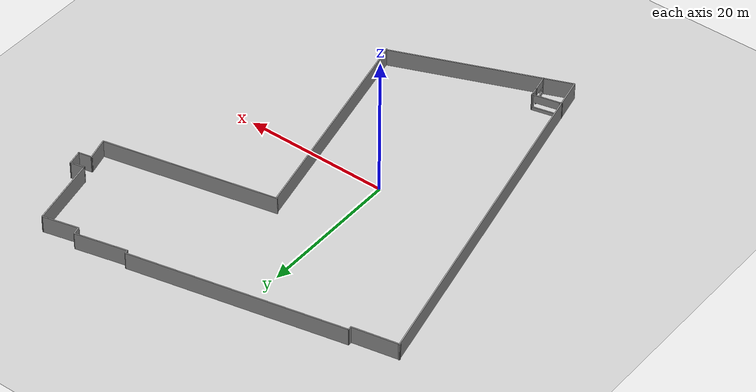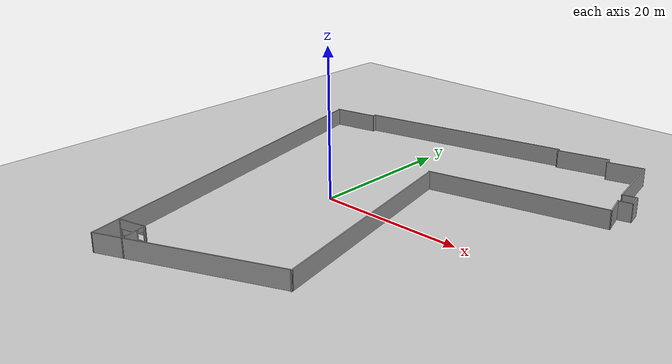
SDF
<sdf version="1.6">
 <world name="orkla-sim-1">
  <model name="ground_plane">
   <pose>6 1.2 0 0 -0 0.011</pose>
   <static>1</static>
   <link name="link">
    <collision name="collision">
     <geometry><plane><normal>0 0 1</normal><size>100 100</size></plane></geometry>
     <surface><friction><ode><mu>100</mu><mu2>50</mu2></ode></friction></surface>
    </collision>
    <visual name="visual">
     <cast_shadows>0</cast_shadows>
     <geometry><plane><normal>0 0 1</normal><size>100 100</size></plane></geometry>
     <material>
      <script><uri>file://media/materials/scripts/gazebo.material</uri><name>Gazebo/Grey</name></script>
     </material>
    </visual>
    <velocity_decay><linear>0</linear><angular>0</angular></velocity_decay>
   </link>
  </model>
  <light name="sun" type="directional">
   <pose>0 0 10 0 -0 0</pose>
   <diffuse>0.8 0.8 0.8 1</diffuse>
   <specular>0.2 0.2 0.2 1</specular>
   <attenuation>
    <range>1000</range>
    <constant>0.9</constant>
    <linear>0.01</linear>
    <quadratic>0.001</quadratic>
   </attenuation>
   <direction>-0.5 0.1 -0.9</direction>
  </light>
  <physics name="default_physics" default="0" type="ode">
   <max_step_size>0.002</max_step_size>
   <real_time_factor>1</real_time_factor>
   <real_time_update_rate>1000</real_time_update_rate>
  </physics>
  <scene><ambient>0.4 0.4 0.4 1</ambient><background>0.7 0.7 0.7 1</background><shadows>1</shadows></scene>
  <spherical_coordinates>
   <surface_model>EARTH_WGS84</surface_model>
   <latitude_deg>0</latitude_deg>
   <longitude_deg>0</longitude_deg>
   <elevation>0</elevation>
   <heading_deg>0</heading_deg>
  </spherical_coordinates>
  <gravity>0 0 -9.8</gravity>
  <magnetic_field>6e-06 2.3e-05 -4.2e-05</magnetic_field>
  <atmosphere type="adiabatic"/>
  <model name="orkla-floorplan">
   <pose>6 1.22705 0 0 -0 0.011</pose>
   <link name="Wall_10">
    <collision name="Wall_10_Collision">
     <geometry><box><size>3.3474 0.15 2.5</size></box></geometry>
     <pose>0 0 1.25 0 -0 0</pose>
    </collision>
    <visual name="Wall_10_Visual">
     <pose>0 0 1.25 0 -0 0</pose>
     <geometry><box><size>3.3474 0.15 2.5</size></box></geometry>
     <material>
      <script><uri>file://media/materials/scripts/gazebo.material</uri><name>Gazebo/Grey</name></script>
      <ambient>1 1 1 1</ambient>
     </material>
     <meta><layer>0</layer></meta>
    </visual>
    <pose>24.3229 16.2505 0 0 -0 1.81686</pose>
   </link>
   <link name="Wall_11">
    <collision name="Wall_11_Collision">
     <geometry><box><size>1.9218 0.15 2.5</size></box></geometry>
     <pose>0 0 1.25 0 -0 0</pose>
    </collision>
    <visual name="Wall_11_Visual">
     <pose>0 0 1.25 0 -0 0</pose>
     <geometry><box><size>1.9218 0.15 2.5</size></box></geometry>
     <material>
      <script><uri>file://media/materials/scripts/gazebo.material</uri><name>Gazebo/Grey</name></script>
      <ambient>1 1 1 1</ambient>
     </material>
     <meta><layer>0</layer></meta>
    </visual>
    <pose>24.8003 17.9836 0 0 -0 0.207496</pose>
   </link>
   <link name="Wall_12">
    <collision name="Wall_12_Collision">
     <geometry><box><size>2.19613 0.15 2.5</size></box></geometry>
     <pose>0 0 1.25 0 -0 0</pose>
    </collision>
    <visual name="Wall_12_Visual">
     <pose>0 0 1.25 0 -0 0</pose>
     <geometry><box><size>2.19613 0.15 2.5</size></box></geometry>
     <material>
      <script><uri>file://media/materials/scripts/gazebo.material</uri><name>Gazebo/Grey</name></script>
      <ambient>1 1 1 1</ambient>
     </material>
     <meta><layer>0</layer></meta>
    </visual>
    <pose>25.4695 19.1698 0 0 -0 1.76528</pose>
   </link>
   <link name="Wall_13">
    <collision name="Wall_13_Collision">
     <geometry><box><size>2.02068 0.15 2.5</size></box></geometry>
     <pose>0 0 1.25 0 -0 0</pose>
    </collision>
    <visual name="Wall_13_Visual">
     <pose>0 0 1.25 0 -0 0</pose>
     <geometry><box><size>2.02068 0.15 2.5</size></box></geometry>
     <material>
      <script><uri>file://media/materials/scripts/gazebo.material</uri><name>Gazebo/Grey</name></script>
      <ambient>1 1 1 1</ambient>
     </material>
     <meta><layer>0</layer></meta>
    </visual>
    <pose>24.3593 19.9683 0 0 -0 -2.92028</pose>
   </link>
   <link name="Wall_14">
    <collision name="Wall_14_Collision">
     <geometry><box><size>10.1792 0.15 2.5</size></box></geometry>
     <pose>0 0 1.25 0 -0 0</pose>
    </collision>
    <visual name="Wall_14_Visual">
     <pose>0 0 1.25 0 -0 0</pose>
     <geometry><box><size>10.1792 0.15 2.5</size></box></geometry>
     <material>
      <script><uri>file://media/materials/scripts/gazebo.material</uri><name>Gazebo/Grey</name></script>
      <ambient>1 1 1 1</ambient>
     </material>
     <meta><layer>0</layer></meta>
    </visual>
    <pose>22.5228 24.6917 0 0 -0 1.7561</pose>
   </link>
   <link name="Wall_15">
    <collision name="Wall_15_Collision">
     <geometry><box><size>5.06097 0.15 2.5</size></box></geometry>
     <pose>0 0 1.25 0 -0 0</pose>
    </collision>
    <visual name="Wall_15_Visual">
     <pose>0 0 1.25 0 -0 0</pose>
     <geometry><box><size>5.06097 0.15 2.5</size></box></geometry>
     <material>
      <script><uri>file://media/materials/scripts/gazebo.material</uri><name>Gazebo/Grey</name></script>
      <ambient>1 1 1 1</ambient>
     </material>
     <meta><layer>0</layer></meta>
    </visual>
    <pose>19.2067 29.0664 0 0 -0 -2.91399</pose>
   </link>
   <link name="Wall_16">
    <collision name="Wall_16_Collision">
     <geometry><box><size>1.21659 0.15 2.5</size></box></geometry>
     <pose>0 0 1.25 0 -0 0</pose>
    </collision>
    <visual name="Wall_16_Visual">
     <pose>0 0 1.25 0 -0 0</pose>
     <geometry><box><size>1.21659 0.15 2.5</size></box></geometry>
     <material>
      <script><uri>file://media/materials/scripts/gazebo.material</uri><name>Gazebo/Grey</name></script>
      <ambient>1 1 1 1</ambient>
     </material>
     <meta><layer>0</layer></meta>
    </visual>
    <pose>16.6915 29.0312 0 0 -0 1.80378</pose>
   </link>
   <link name="Wall_18">
    <collision name="Wall_18_Collision">
     <geometry><box><size>7.28914 0.15 2.5</size></box></geometry>
     <pose>0 0 1.25 0 -0 0</pose>
    </collision>
    <visual name="Wall_18_Visual">
     <pose>0 0 1.25 0 -0 0</pose>
     <geometry><box><size>7.28914 0.15 2.5</size></box></geometry>
     <material>
      <script><uri>file://media/materials/scripts/gazebo.material</uri><name>Gazebo/Grey</name></script>
      <ambient>1 1 1 1</ambient>
     </material>
     <meta><layer>0</layer></meta>
    </visual>
    <pose>13.0856 28.7674 0 0 -0 -2.92052</pose>
   </link>
   <link name="Wall_19">
    <collision name="Wall_19_Collision">
     <geometry><box><size>0.636498 0.15 2.5</size></box></geometry>
     <pose>0 0 1.25 0 -0 0</pose>
    </collision>
    <visual name="Wall_19_Visual">
     <pose>0 0 1.25 0 -0 0</pose>
     <geometry><box><size>0.636498 0.15 2.5</size></box></geometry>
     <material>
      <script><uri>file://media/materials/scripts/gazebo.material</uri><name>Gazebo/Grey</name></script>
      <ambient>1 1 1 1</ambient>
     </material>
     <meta><layer>0</layer></meta>
    </visual>
    <pose>9.55017 28.2221 0 0 -0 1.78947</pose>
   </link>
   <link name="Wall_20">
    <collision name="Wall_20_Collision">
     <geometry><box><size>29.6887 0.15 2.5</size></box></geometry>
     <pose>0 0 1.25 0 -0 0</pose>
    </collision>
    <visual name="Wall_20_Visual">
     <pose>0 0 1.25 0 -0 0</pose>
     <geometry><box><size>29.6887 0.15 2.5</size></box></geometry>
     <material>
      <script><uri>file://media/materials/scripts/gazebo.material</uri><name>Gazebo/Grey</name></script>
      <ambient>1 1 1 1</ambient>
     </material>
     <meta><layer>0</layer></meta>
    </visual>
    <pose>-4.97866 25.531 0 0 -0 -2.94198</pose>
   </link>
   <link name="Wall_21">
    <collision name="Wall_21_Collision">
     <geometry><box><size>0.662814 0.15 2.5</size></box></geometry>
     <pose>0 0 1.25 0 -0 0</pose>
    </collision>
    <visual name="Wall_21_Visual">
     <pose>0 0 1.25 0 -0 0</pose>
     <geometry><box><size>0.662814 0.15 2.5</size></box></geometry>
     <material>
      <script><uri>file://media/materials/scripts/gazebo.material</uri><name>Gazebo/Grey</name></script>
      <ambient>1 1 1 1</ambient>
     </material>
     <meta><layer>0</layer></meta>
    </visual>
    <pose>-19.4283 22.3473 0 0 -0 -1.46772</pose>
   </link>
   <link name="Wall_22">
    <collision name="Wall_22_Collision">
     <geometry><box><size>6.52421 0.15 2.5</size></box></geometry>
     <pose>0 0 1.25 0 -0 0</pose>
    </collision>
    <visual name="Wall_22_Visual">
     <pose>0 0 1.25 0 -0 0</pose>
     <geometry><box><size>6.52421 0.15 2.5</size></box></geometry>
     <material>
      <script><uri>file://media/materials/scripts/gazebo.material</uri><name>Gazebo/Grey</name></script>
      <ambient>1 1 1 1</ambient>
     </material>
     <meta><layer>0</layer></meta>
    </visual>
    <pose>-22.5353 21.5092 0 0 -0 -2.95763</pose>
   </link>
   <link name="Wall_25">
    <pose>-14.1218 -25.1534 0 0 -0 0.215766</pose>
    <visual name="Wall_25_Visual_0">
     <pose>-1.89861 0 1.25 0 -0 0</pose>
     <geometry><box><size>0.373888 0.15 2.5</size></box></geometry>
     <material>
      <script><uri>file://media/materials/scripts/gazebo.material</uri><name>Gazebo/Grey</name></script>
      <ambient>1 1 1 1</ambient>
     </material>
     <meta><layer>0</layer></meta>
    </visual>
    <collision name="Wall_25_Collision_0">
     <geometry><box><size>0.373888 0.15 2.5</size></box></geometry>
     <pose>-1.89861 0 1.25 0 -0 0</pose>
    </collision>
    <visual name="Wall_25_Visual_1">
     <pose>0.186944 0 0.25 0 -0 0</pose>
     <geometry><box><size>3.79721 0.15 0.5</size></box></geometry>
     <material>
      <script><uri>file://media/materials/scripts/gazebo.material</uri><name>Gazebo/Grey</name></script>
      <ambient>1 1 1 1</ambient>
     </material>
     <meta><layer>0</layer></meta>
    </visual>
    <collision name="Wall_25_Collision_1">
     <geometry><box><size>3.79721 0.15 0.5</size></box></geometry>
     <pose>0.186944 0 0.25 0 -0 0</pose>
    </collision>
    <visual name="Wall_25_Visual_2">
     <pose>1.93942 0 1.5 0 -0 0</pose>
     <geometry><box><size>0.292268 0.15 2</size></box></geometry>
     <material>
      <script><uri>file://media/materials/scripts/gazebo.material</uri><name>Gazebo/Grey</name></script>
      <ambient>1 1 1 1</ambient>
     </material>
     <meta><layer>0</layer></meta>
    </visual>
    <collision name="Wall_25_Collision_2">
     <geometry><box><size>0.292268 0.15 2</size></box></geometry>
     <pose>1.93942 0 1.5 0 -0 0</pose>
    </collision>
    <visual name="Wall_25_Visual_3">
     <pose>0.04081 0 1.9 0 -0 0</pose>
     <geometry><box><size>3.50494 0.15 1.2</size></box></geometry>
     <material>
      <script><uri>file://media/materials/scripts/gazebo.material</uri><name>Gazebo/Grey</name></script>
      <ambient>1 1 1 1</ambient>
     </material>
     <meta><layer>0</layer></meta>
    </visual>
    <collision name="Wall_25_Collision_3">
     <geometry><box><size>3.50494 0.15 1.2</size></box></geometry>
     <pose>0.04081 0 1.9 0 -0 0</pose>
    </collision>
   </link>
   <link name="Wall_26">
    <pose>-11.8163 -26.4449 0 0 -0 -1.37494</pose>
    <visual name="Wall_26_Visual_0">
     <pose>-1.66364 0 1.25 0 -0 0</pose>
     <geometry><box><size>0.333874 0.15 2.5</size></box></geometry>
     <material>
      <script><uri>file://media/materials/scripts/gazebo.material</uri><name>Gazebo/Grey</name></script>
      <ambient>1 1 1 1</ambient>
     </material>
     <meta><layer>0</layer></meta>
    </visual>
    <collision name="Wall_26_Collision_0">
     <geometry><box><size>0.333874 0.15 2.5</size></box></geometry>
     <pose>-1.66364 0 1.25 0 -0 0</pose>
    </collision>
    <visual name="Wall_26_Visual_1">
     <pose>-0.50617 0 1.25 0 -0 0</pose>
     <geometry><box><size>0.181059 0.15 2.5</size></box></geometry>
     <material>
      <script><uri>file://media/materials/scripts/gazebo.material</uri><name>Gazebo/Grey</name></script>
      <ambient>1 1 1 1</ambient>
     </material>
     <meta><layer>0</layer></meta>
    </visual>
    <collision name="Wall_26_Collision_1">
     <geometry><box><size>0.181059 0.15 2.5</size></box></geometry>
     <pose>-0.50617 0 1.25 0 -0 0</pose>
    </collision>
    <visual name="Wall_26_Visual_2">
     <pose>0.707467 0 0.25 0 -0 0</pose>
     <geometry><box><size>2.24621 0.15 0.5</size></box></geometry>
     <material>
      <script><uri>file://media/materials/scripts/gazebo.material</uri><name>Gazebo/Grey</name></script>
      <ambient>1 1 1 1</ambient>
     </material>
     <meta><layer>0</layer></meta>
    </visual>
    <collision name="Wall_26_Collision_2">
     <geometry><box><size>2.24621 0.15 0.5</size></box></geometry>
     <pose>0.707467 0 0.25 0 -0 0</pose>
    </collision>
    <visual name="Wall_26_Visual_3">
     <pose>1.62009 0 1.5 0 -0 0</pose>
     <geometry><box><size>0.420962 0.15 2</size></box></geometry>
     <material>
      <script><uri>file://media/materials/scripts/gazebo.material</uri><name>Gazebo/Grey</name></script>
      <ambient>1 1 1 1</ambient>
     </material>
     <meta><layer>0</layer></meta>
    </visual>
    <collision name="Wall_26_Collision_3">
     <geometry><box><size>0.420962 0.15 2</size></box></geometry>
     <pose>1.62009 0 1.5 0 -0 0</pose>
    </collision>
    <visual name="Wall_26_Visual_4">
     <pose>0.496986 0 1.9 0 -0 0</pose>
     <geometry><box><size>1.82525 0.15 1.2</size></box></geometry>
     <material>
      <script><uri>file://media/materials/scripts/gazebo.material</uri><name>Gazebo/Grey</name></script>
      <ambient>1 1 1 1</ambient>
     </material>
     <meta><layer>0</layer></meta>
    </visual>
    <collision name="Wall_26_Collision_4">
     <geometry><box><size>1.82525 0.15 1.2</size></box></geometry>
     <pose>0.496986 0 1.9 0 -0 0</pose>
    </collision>
    <visual name="Wall_26_Visual_5">
     <pose>-1.0467 0 2.25 0 -0 0</pose>
     <geometry><box><size>0.9 0.15 0.5</size></box></geometry>
     <material>
      <script><uri>file://media/materials/scripts/gazebo.material</uri><name>Gazebo/Grey</name></script>
      <ambient>1 1 1 1</ambient>
     </material>
     <meta><layer>0</layer></meta>
    </visual>
    <collision name="Wall_26_Collision_5">
     <geometry><box><size>0.9 0.15 0.5</size></box></geometry>
     <pose>-1.0467 0 2.25 0 -0 0</pose>
    </collision>
   </link>
   <link name="Wall_4">
    <collision name="Wall_4_Collision">
     <geometry><box><size>51.8186 0.15 2.5</size></box></geometry>
     <pose>0 0 1.25 0 -0 0</pose>
    </collision>
    <visual name="Wall_4_Visual">
     <pose>0 0 1.25 0 -0 0</pose>
     <geometry><box><size>51.8186 0.15 2.5</size></box></geometry>
     <material>
      <script><uri>file://media/materials/scripts/gazebo.material</uri><name>Gazebo/Grey</name></script>
      <ambient>1 1 1 1</ambient>
     </material>
     <meta><layer>0</layer></meta>
    </visual>
    <pose>-20.4003 -4.30553 0 0 -0 -1.36852</pose>
   </link>
   <link name="Wall_5">
    <collision name="Wall_5_Collision">
     <geometry><box><size>24.6789 0.15 2.5</size></box></geometry>
     <pose>0 0 1.25 0 -0 0</pose>
    </collision>
    <visual name="Wall_5_Visual">
     <pose>0 0 1.25 0 -0 0</pose>
     <geometry><box><size>24.6789 0.15 2.5</size></box></geometry>
     <material>
      <script><uri>file://media/materials/scripts/gazebo.material</uri><name>Gazebo/Grey</name></script>
      <ambient>1 1 1 1</ambient>
     </material>
     <meta><layer>0</layer></meta>
    </visual>
    <pose>-3.8054 -25.1025 0 0 -0 0.37662</pose>
   </link>
   <link name="Wall_6">
    <collision name="Wall_6_Collision">
     <geometry><box><size>31.3835 0.15 2.5</size></box></geometry>
     <pose>0 0 1.25 0 -0 0</pose>
    </collision>
    <visual name="Wall_6_Visual">
     <pose>0 0 1.25 0 -0 0</pose>
     <geometry><box><size>31.3835 0.15 2.5</size></box></geometry>
     <material>
      <script><uri>file://media/materials/scripts/gazebo.material</uri><name>Gazebo/Grey</name></script>
      <ambient>1 1 1 1</ambient>
     </material>
     <meta><layer>0</layer></meta>
    </visual>
    <pose>4.45142 -5.40398 0 0 -0 1.77377</pose>
   </link>
   <link name="Wall_7">
    <collision name="Wall_7_Collision">
     <geometry><box><size>24.1535 0.15 2.5</size></box></geometry>
     <pose>0 0 1.25 0 -0 0</pose>
    </collision>
    <visual name="Wall_7_Visual">
     <pose>0 0 1.25 0 -0 0</pose>
     <geometry><box><size>24.1535 0.15 2.5</size></box></geometry>
     <material>
      <script><uri>file://media/materials/scripts/gazebo.material</uri><name>Gazebo/Grey</name></script>
      <ambient>1 1 1 1</ambient>
     </material>
     <meta><layer>0</layer></meta>
    </visual>
    <pose>12.9537 12.2961 0 0 -0 0.201658</pose>
   </link>
   <static>1</static>
  </model>
 </world>
</sdf>
